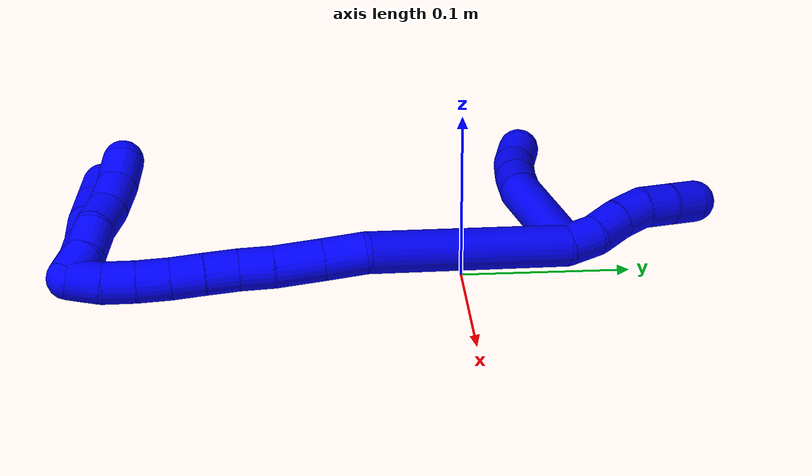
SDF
<sdf version="1.7">
 <world name="default">
  <model name="1">
   <static>0</static>
   <link name="1">
    <collision name="collision-cylinder-e_1_2_8">
     <pose>-0.020403 -0.000506 0.034634 0.014619 -0.532313 -0.003986</pose>
     <geometry><cylinder><radius>0.0125</radius><length>0.0804</length></cylinder></geometry>
     <surface>
      <friction><ode><mu>1.16</mu><mu2>1.16</mu2><slip1>0</slip1><slip2>0</slip2></ode></friction>
      <contact><ode><kp>1e+06</kp><kd>1</kd><max_vel>0</max_vel><min_depth>0.001</min_depth></ode></contact>
     </surface>
    </collision>
    <visual name="visual-cylinder-e_1_2_8">
     <pose>-0.020403 -0.000506 0.034634 0.014619 -0.532313 -0.003986</pose>
     <geometry><cylinder><radius>0.0125</radius><length>0.0804</length></cylinder></geometry>
     <material><ambient>0 0 1 1</ambient></material>
    </visual>
    <collision name="collision-cylinder-e_2_8_9">
     <pose>-0.048115 0.001256 0.078855 -0.232407 -0.638393 0.077119</pose>
     <geometry><cylinder><radius>0.0125</radius><length>0.024535</length></cylinder></geometry>
     <surface>
      <friction><ode><mu>1.16</mu><mu2>1.16</mu2><slip1>0</slip1><slip2>0</slip2></ode></friction>
      <contact><ode><kp>1e+06</kp><kd>1</kd><max_vel>0</max_vel><min_depth>0.001</min_depth></ode></contact>
     </surface>
    </collision>
    <visual name="visual-cylinder-e_2_8_9">
     <pose>-0.048115 0.001256 0.078855 -0.232407 -0.638393 0.077119</pose>
     <geometry><cylinder><radius>0.0125</radius><length>0.024535</length></cylinder></geometry>
     <material><ambient>0 0 1 1</ambient></material>
    </visual>
    <collision name="collision-cylinder-e_3_9_10">
     <pose>-0.062956 0.00676 0.097839 -0.331517 -0.648421 0.112326</pose>
     <geometry><cylinder><radius>0.0125</radius><length>0.024939</length></cylinder></geometry>
     <surface>
      <friction><ode><mu>1.16</mu><mu2>1.16</mu2><slip1>0</slip1><slip2>0</slip2></ode></friction>
      <contact><ode><kp>1e+06</kp><kd>1</kd><max_vel>0</max_vel><min_depth>0.001</min_depth></ode></contact>
     </surface>
    </collision>
    <visual name="visual-cylinder-e_3_9_10">
     <pose>-0.062956 0.00676 0.097839 -0.331517 -0.648421 0.112326</pose>
     <geometry><cylinder><radius>0.0125</radius><length>0.024939</length></cylinder></geometry>
     <material><ambient>0 0 1 1</ambient></material>
    </visual>
    <collision name="collision-cylinder-e_4_10_6">
     <pose>-0.075039 0.01472 0.114866 -0.55452 -0.469376 0.135878</pose>
     <geometry><cylinder><radius>0.0125</radius><length>0.020127</length></cylinder></geometry>
     <surface>
      <friction><ode><mu>1.16</mu><mu2>1.16</mu2><slip1>0</slip1><slip2>0</slip2></ode></friction>
      <contact><ode><kp>1e+06</kp><kd>1</kd><max_vel>0</max_vel><min_depth>0.001</min_depth></ode></contact>
     </surface>
    </collision>
    <visual name="visual-cylinder-e_4_10_6">
     <pose>-0.075039 0.01472 0.114866 -0.55452 -0.469376 0.135878</pose>
     <geometry><cylinder><radius>0.0125</radius><length>0.020127</length></cylinder></geometry>
     <material><ambient>0 0 1 1</ambient></material>
    </visual>
    <collision name="collision-cylinder-e_1_2_11">
     <pose>-0.001843 0.009742 0.001303 -1.4378 -0.185399 0.162356</pose>
     <geometry><cylinder><radius>0.0125</radius><length>0.02</length></cylinder></geometry>
     <surface>
      <friction><ode><mu>1.16</mu><mu2>1.16</mu2><slip1>0</slip1><slip2>0</slip2></ode></friction>
      <contact><ode><kp>1e+06</kp><kd>1</kd><max_vel>0</max_vel><min_depth>0.001</min_depth></ode></contact>
     </surface>
    </collision>
    <visual name="visual-cylinder-e_1_2_11">
     <pose>-0.001843 0.009742 0.001303 -1.4378 -0.185399 0.162356</pose>
     <geometry><cylinder><radius>0.0125</radius><length>0.02</length></cylinder></geometry>
     <material><ambient>0 0 1 1</ambient></material>
    </visual>
    <collision name="collision-cylinder-e_2_11_12">
     <pose>-0.005834 0.028426 0.006534 -1.15694 -0.216404 0.141625</pose>
     <geometry><cylinder><radius>0.0125</radius><length>0.02</length></cylinder></geometry>
     <surface>
      <friction><ode><mu>1.16</mu><mu2>1.16</mu2><slip1>0</slip1><slip2>0</slip2></ode></friction>
      <contact><ode><kp>1e+06</kp><kd>1</kd><max_vel>0</max_vel><min_depth>0.001</min_depth></ode></contact>
     </surface>
    </collision>
    <visual name="visual-cylinder-e_2_11_12">
     <pose>-0.005834 0.028426 0.006534 -1.15694 -0.216404 0.141625</pose>
     <geometry><cylinder><radius>0.0125</radius><length>0.02</length></cylinder></geometry>
     <material><ambient>0 0 1 1</ambient></material>
    </visual>
    <collision name="collision-cylinder-e_3_12_13">
     <pose>-0.010697 0.046539 0.013381 -1.26263 -0.275074 0.201707</pose>
     <geometry><cylinder><radius>0.0125</radius><length>0.02</length></cylinder></geometry>
     <surface>
      <friction><ode><mu>1.16</mu><mu2>1.16</mu2><slip1>0</slip1><slip2>0</slip2></ode></friction>
      <contact><ode><kp>1e+06</kp><kd>1</kd><max_vel>0</max_vel><min_depth>0.001</min_depth></ode></contact>
     </surface>
    </collision>
    <visual name="visual-cylinder-e_3_12_13">
     <pose>-0.010697 0.046539 0.013381 -1.26263 -0.275074 0.201707</pose>
     <geometry><cylinder><radius>0.0125</radius><length>0.02</length></cylinder></geometry>
     <material><ambient>0 0 1 1</ambient></material>
    </visual>
    <collision name="collision-cylinder-e_4_13_14">
     <pose>-0.017148 0.064981 0.016591 -1.53946 -0.38272 0.371185</pose>
     <geometry><cylinder><radius>0.0125</radius><length>0.02</length></cylinder></geometry>
     <surface>
      <friction><ode><mu>1.16</mu><mu2>1.16</mu2><slip1>0</slip1><slip2>0</slip2></ode></friction>
      <contact><ode><kp>1e+06</kp><kd>1</kd><max_vel>0</max_vel><min_depth>0.001</min_depth></ode></contact>
     </surface>
    </collision>
    <visual name="visual-cylinder-e_4_13_14">
     <pose>-0.017148 0.064981 0.016591 -1.53946 -0.38272 0.371185</pose>
     <geometry><cylinder><radius>0.0125</radius><length>0.02</length></cylinder></geometry>
     <material><ambient>0 0 1 1</ambient></material>
    </visual>
    <collision name="collision-cylinder-e_5_14_5">
     <pose>-0.025411 0.083127 0.017745 -1.47381 -0.469951 0.427826</pose>
     <geometry><cylinder><radius>0.0125</radius><length>0.02</length></cylinder></geometry>
     <surface>
      <friction><ode><mu>1.16</mu><mu2>1.16</mu2><slip1>0</slip1><slip2>0</slip2></ode></friction>
      <contact><ode><kp>1e+06</kp><kd>1</kd><max_vel>0</max_vel><min_depth>0.001</min_depth></ode></contact>
     </surface>
    </collision>
    <visual name="visual-cylinder-e_5_14_5">
     <pose>-0.025411 0.083127 0.017745 -1.47381 -0.469951 0.427826</pose>
     <geometry><cylinder><radius>0.0125</radius><length>0.02</length></cylinder></geometry>
     <material><ambient>0 0 1 1</ambient></material>
    </visual>
    <collision name="collision-cylinder-e_1_2_15">
     <pose>0.016047 -0.059596 0.009551 1.41189 0.259863 0.221874</pose>
     <geometry><cylinder><radius>0.0125</radius><length>0.124906</length></cylinder></geometry>
     <surface>
      <friction><ode><mu>1.16</mu><mu2>1.16</mu2><slip1>0</slip1><slip2>0</slip2></ode></friction>
      <contact><ode><kp>1e+06</kp><kd>1</kd><max_vel>0</max_vel><min_depth>0.001</min_depth></ode></contact>
     </surface>
    </collision>
    <visual name="visual-cylinder-e_1_2_15">
     <pose>0.016047 -0.059596 0.009551 1.41189 0.259863 0.221874</pose>
     <geometry><cylinder><radius>0.0125</radius><length>0.124906</length></cylinder></geometry>
     <material><ambient>0 0 1 1</ambient></material>
    </visual>
    <collision name="collision-cylinder-e_2_15_16">
     <pose>0.031978 -0.131523 0.021443 1.38313 -0.009261 -0.007668</pose>
     <geometry><cylinder><radius>0.0125</radius><length>0.025104</length></cylinder></geometry>
     <surface>
      <friction><ode><mu>1.16</mu><mu2>1.16</mu2><slip1>0</slip1><slip2>0</slip2></ode></friction>
      <contact><ode><kp>1e+06</kp><kd>1</kd><max_vel>0</max_vel><min_depth>0.001</min_depth></ode></contact>
     </surface>
    </collision>
    <visual name="visual-cylinder-e_2_15_16">
     <pose>0.031978 -0.131523 0.021443 1.38313 -0.009261 -0.007668</pose>
     <geometry><cylinder><radius>0.0125</radius><length>0.025104</length></cylinder></geometry>
     <material><ambient>0 0 1 1</ambient></material>
    </visual>
    <collision name="collision-cylinder-e_3_16_17">
     <pose>0.031949 -0.158205 0.026521 1.38239 0.005948 0.004921</pose>
     <geometry><cylinder><radius>0.0125</radius><length>0.029221</length></cylinder></geometry>
     <surface>
      <friction><ode><mu>1.16</mu><mu2>1.16</mu2><slip1>0</slip1><slip2>0</slip2></ode></friction>
      <contact><ode><kp>1e+06</kp><kd>1</kd><max_vel>0</max_vel><min_depth>0.001</min_depth></ode></contact>
     </surface>
    </collision>
    <visual name="visual-cylinder-e_3_16_17">
     <pose>0.031949 -0.158205 0.026521 1.38239 0.005948 0.004921</pose>
     <geometry><cylinder><radius>0.0125</radius><length>0.029221</length></cylinder></geometry>
     <material><ambient>0 0 1 1</ambient></material>
    </visual>
    <collision name="collision-cylinder-e_4_17_18">
     <pose>0.032206 -0.182491 0.031924 1.30848 0.016575 0.012712</pose>
     <geometry><cylinder><radius>0.0125</radius><length>0.020574</length></cylinder></geometry>
     <surface>
      <friction><ode><mu>1.16</mu><mu2>1.16</mu2><slip1>0</slip1><slip2>0</slip2></ode></friction>
      <contact><ode><kp>1e+06</kp><kd>1</kd><max_vel>0</max_vel><min_depth>0.001</min_depth></ode></contact>
     </surface>
    </collision>
    <visual name="visual-cylinder-e_4_17_18">
     <pose>0.032206 -0.182491 0.031924 1.30848 0.016575 0.012712</pose>
     <geometry><cylinder><radius>0.0125</radius><length>0.020574</length></cylinder></geometry>
     <material><ambient>0 0 1 1</ambient></material>
    </visual>
    <collision name="collision-cylinder-e_5_18_19">
     <pose>0.032607 -0.202249 0.036645 1.36475 0.022896 0.018605</pose>
     <geometry><cylinder><radius>0.0125</radius><length>0.020079</length></cylinder></geometry>
     <surface>
      <friction><ode><mu>1.16</mu><mu2>1.16</mu2><slip1>0</slip1><slip2>0</slip2></ode></friction>
      <contact><ode><kp>1e+06</kp><kd>1</kd><max_vel>0</max_vel><min_depth>0.001</min_depth></ode></contact>
     </surface>
    </collision>
    <visual name="visual-cylinder-e_5_18_19">
     <pose>0.032607 -0.202249 0.036645 1.36475 0.022896 0.018605</pose>
     <geometry><cylinder><radius>0.0125</radius><length>0.020079</length></cylinder></geometry>
     <material><ambient>0 0 1 1</ambient></material>
    </visual>
    <collision name="collision-cylinder-e_6_19_20">
     <pose>0.03274 -0.221867 0.040812 1.3583 -0.009628 -0.007772</pose>
     <geometry><cylinder><radius>0.0125</radius><length>0.020037</length></cylinder></geometry>
     <surface>
      <friction><ode><mu>1.16</mu><mu2>1.16</mu2><slip1>0</slip1><slip2>0</slip2></ode></friction>
      <contact><ode><kp>1e+06</kp><kd>1</kd><max_vel>0</max_vel><min_depth>0.001</min_depth></ode></contact>
     </surface>
    </collision>
    <visual name="visual-cylinder-e_6_19_20">
     <pose>0.03274 -0.221867 0.040812 1.3583 -0.009628 -0.007772</pose>
     <geometry><cylinder><radius>0.0125</radius><length>0.020037</length></cylinder></geometry>
     <material><ambient>0 0 1 1</ambient></material>
    </visual>
    <collision name="collision-cylinder-e_7_20_21">
     <pose>0.032816 -0.24134 0.04543 1.31754 0.017218 0.013329</pose>
     <geometry><cylinder><radius>0.0125</radius><length>0.020002</length></cylinder></geometry>
     <surface>
      <friction><ode><mu>1.16</mu><mu2>1.16</mu2><slip1>0</slip1><slip2>0</slip2></ode></friction>
      <contact><ode><kp>1e+06</kp><kd>1</kd><max_vel>0</max_vel><min_depth>0.001</min_depth></ode></contact>
     </surface>
    </collision>
    <visual name="visual-cylinder-e_7_20_21">
     <pose>0.032816 -0.24134 0.04543 1.31754 0.017218 0.013329</pose>
     <geometry><cylinder><radius>0.0125</radius><length>0.020002</length></cylinder></geometry>
     <material><ambient>0 0 1 1</ambient></material>
    </visual>
    <collision name="collision-cylinder-e_8_21_22">
     <pose>0.033185 -0.260536 0.051005 1.25876 0.019733 0.014369</pose>
     <geometry><cylinder><radius>0.0125</radius><length>0.02</length></cylinder></geometry>
     <surface>
      <friction><ode><mu>1.16</mu><mu2>1.16</mu2><slip1>0</slip1><slip2>0</slip2></ode></friction>
      <contact><ode><kp>1e+06</kp><kd>1</kd><max_vel>0</max_vel><min_depth>0.001</min_depth></ode></contact>
     </surface>
    </collision>
    <visual name="visual-cylinder-e_8_21_22">
     <pose>0.033185 -0.260536 0.051005 1.25876 0.019733 0.014369</pose>
     <geometry><cylinder><radius>0.0125</radius><length>0.02</length></cylinder></geometry>
     <material><ambient>0 0 1 1</ambient></material>
    </visual>
    <collision name="collision-cylinder-e_9_22_1">
     <pose>0.034089 -0.278899 0.058763 1.08345 0.070425 0.042392</pose>
     <geometry><cylinder><radius>0.0125</radius><length>0.020077</length></cylinder></geometry>
     <surface>
      <friction><ode><mu>1.16</mu><mu2>1.16</mu2><slip1>0</slip1><slip2>0</slip2></ode></friction>
      <contact><ode><kp>1e+06</kp><kd>1</kd><max_vel>0</max_vel><min_depth>0.001</min_depth></ode></contact>
     </surface>
    </collision>
    <visual name="visual-cylinder-e_9_22_1">
     <pose>0.034089 -0.278899 0.058763 1.08345 0.070425 0.042392</pose>
     <geometry><cylinder><radius>0.0125</radius><length>0.020077</length></cylinder></geometry>
     <material><ambient>0 0 1 1</ambient></material>
    </visual>
    <collision name="collision-cylinder-e_1_1_23">
     <pose>0.033825 -0.280256 0.070007 -0.851952 -0.097125 0.044099</pose>
     <geometry><cylinder><radius>0.0125</radius><length>0.02</length></cylinder></geometry>
     <surface>
      <friction><ode><mu>1.16</mu><mu2>1.16</mu2><slip1>0</slip1><slip2>0</slip2></ode></friction>
      <contact><ode><kp>1e+06</kp><kd>1</kd><max_vel>0</max_vel><min_depth>0.001</min_depth></ode></contact>
     </surface>
    </collision>
    <visual name="visual-cylinder-e_1_1_23">
     <pose>0.033825 -0.280256 0.070007 -0.851952 -0.097125 0.044099</pose>
     <geometry><cylinder><radius>0.0125</radius><length>0.02</length></cylinder></geometry>
     <material><ambient>0 0 1 1</ambient></material>
    </visual>
    <collision name="collision-cylinder-e_2_23_24">
     <pose>0.031686 -0.267267 0.084831 -0.586759 -0.11722 0.035449</pose>
     <geometry><cylinder><radius>0.0125</radius><length>0.02</length></cylinder></geometry>
     <surface>
      <friction><ode><mu>1.16</mu><mu2>1.16</mu2><slip1>0</slip1><slip2>0</slip2></ode></friction>
      <contact><ode><kp>1e+06</kp><kd>1</kd><max_vel>0</max_vel><min_depth>0.001</min_depth></ode></contact>
     </surface>
    </collision>
    <visual name="visual-cylinder-e_2_23_24">
     <pose>0.031686 -0.267267 0.084831 -0.586759 -0.11722 0.035449</pose>
     <geometry><cylinder><radius>0.0125</radius><length>0.02</length></cylinder></geometry>
     <material><ambient>0 0 1 1</ambient></material>
    </visual>
    <collision name="collision-cylinder-e_3_24_25">
     <pose>0.027037 -0.255747 0.100287 -0.697423 -0.35538 0.130397</pose>
     <geometry><cylinder><radius>0.0125</radius><length>0.02</length></cylinder></geometry>
     <surface>
      <friction><ode><mu>1.16</mu><mu2>1.16</mu2><slip1>0</slip1><slip2>0</slip2></ode></friction>
      <contact><ode><kp>1e+06</kp><kd>1</kd><max_vel>0</max_vel><min_depth>0.001</min_depth></ode></contact>
     </surface>
    </collision>
    <visual name="visual-cylinder-e_3_24_25">
     <pose>0.027037 -0.255747 0.100287 -0.697423 -0.35538 0.130397</pose>
     <geometry><cylinder><radius>0.0125</radius><length>0.02</length></cylinder></geometry>
     <material><ambient>0 0 1 1</ambient></material>
    </visual>
    <collision name="collision-cylinder-e_4_25_26">
     <pose>0.02141 -0.244299 0.115593 -0.589147 -0.216457 0.065907</pose>
     <geometry><cylinder><radius>0.0125</radius><length>0.02</length></cylinder></geometry>
     <surface>
      <friction><ode><mu>1.16</mu><mu2>1.16</mu2><slip1>0</slip1><slip2>0</slip2></ode></friction>
      <contact><ode><kp>1e+06</kp><kd>1</kd><max_vel>0</max_vel><min_depth>0.001</min_depth></ode></contact>
     </surface>
    </collision>
    <visual name="visual-cylinder-e_4_25_26">
     <pose>0.02141 -0.244299 0.115593 -0.589147 -0.216457 0.065907</pose>
     <geometry><cylinder><radius>0.0125</radius><length>0.02</length></cylinder></geometry>
     <material><ambient>0 0 1 1</ambient></material>
    </visual>
    <collision name="collision-cylinder-e_5_26_4">
     <pose>0.017856 -0.234174 0.132428 -0.494508 -0.141138 0.035681</pose>
     <geometry><cylinder><radius>0.0125</radius><length>0.02</length></cylinder></geometry>
     <surface>
      <friction><ode><mu>1.16</mu><mu2>1.16</mu2><slip1>0</slip1><slip2>0</slip2></ode></friction>
      <contact><ode><kp>1e+06</kp><kd>1</kd><max_vel>0</max_vel><min_depth>0.001</min_depth></ode></contact>
     </surface>
    </collision>
    <visual name="visual-cylinder-e_5_26_4">
     <pose>0.017856 -0.234174 0.132428 -0.494508 -0.141138 0.035681</pose>
     <geometry><cylinder><radius>0.0125</radius><length>0.02</length></cylinder></geometry>
     <material><ambient>0 0 1 1</ambient></material>
    </visual>
    <collision name="collision-cylinder-e_1_1_27">
     <pose>0.030849 -0.282068 0.070676 -0.666131 -0.405688 0.142067</pose>
     <geometry><cylinder><radius>0.0125</radius><length>0.02</length></cylinder></geometry>
     <surface>
      <friction><ode><mu>1.16</mu><mu2>1.16</mu2><slip1>0</slip1><slip2>0</slip2></ode></friction>
      <contact><ode><kp>1e+06</kp><kd>1</kd><max_vel>0</max_vel><min_depth>0.001</min_depth></ode></contact>
     </surface>
    </collision>
    <visual name="visual-cylinder-e_1_1_27">
     <pose>0.030849 -0.282068 0.070676 -0.666131 -0.405688 0.142067</pose>
     <geometry><cylinder><radius>0.0125</radius><length>0.02</length></cylinder></geometry>
     <material><ambient>0 0 1 1</ambient></material>
    </visual>
    <collision name="collision-cylinder-e_2_27_28">
     <pose>0.022176 -0.272495 0.085805 -0.45787 -0.492311 0.11696</pose>
     <geometry><cylinder><radius>0.0125</radius><length>0.02</length></cylinder></geometry>
     <surface>
      <friction><ode><mu>1.16</mu><mu2>1.16</mu2><slip1>0</slip1><slip2>0</slip2></ode></friction>
      <contact><ode><kp>1e+06</kp><kd>1</kd><max_vel>0</max_vel><min_depth>0.001</min_depth></ode></contact>
     </surface>
    </collision>
    <visual name="visual-cylinder-e_2_27_28">
     <pose>0.022176 -0.272495 0.085805 -0.45787 -0.492311 0.11696</pose>
     <geometry><cylinder><radius>0.0125</radius><length>0.02</length></cylinder></geometry>
     <material><ambient>0 0 1 1</ambient></material>
    </visual>
    <collision name="collision-cylinder-e_3_28_29">
     <pose>0.013779 -0.265099 0.102328 -0.385858 -0.375788 0.074256</pose>
     <geometry><cylinder><radius>0.0125</radius><length>0.02</length></cylinder></geometry>
     <surface>
      <friction><ode><mu>1.16</mu><mu2>1.16</mu2><slip1>0</slip1><slip2>0</slip2></ode></friction>
      <contact><ode><kp>1e+06</kp><kd>1</kd><max_vel>0</max_vel><min_depth>0.001</min_depth></ode></contact>
     </surface>
    </collision>
    <visual name="visual-cylinder-e_3_28_29">
     <pose>0.013779 -0.265099 0.102328 -0.385858 -0.375788 0.074256</pose>
     <geometry><cylinder><radius>0.0125</radius><length>0.02</length></cylinder></geometry>
     <material><ambient>0 0 1 1</ambient></material>
    </visual>
    <collision name="collision-cylinder-e_4_29_30">
     <pose>0.006417 -0.257029 0.119039 -0.513997 -0.378157 0.100501</pose>
     <geometry><cylinder><radius>0.0125</radius><length>0.02</length></cylinder></geometry>
     <surface>
      <friction><ode><mu>1.16</mu><mu2>1.16</mu2><slip1>0</slip1><slip2>0</slip2></ode></friction>
      <contact><ode><kp>1e+06</kp><kd>1</kd><max_vel>0</max_vel><min_depth>0.001</min_depth></ode></contact>
     </surface>
    </collision>
    <visual name="visual-cylinder-e_4_29_30">
     <pose>0.006417 -0.257029 0.119039 -0.513997 -0.378157 0.100501</pose>
     <geometry><cylinder><radius>0.0125</radius><length>0.02</length></cylinder></geometry>
     <material><ambient>0 0 1 1</ambient></material>
    </visual>
    <collision name="collision-cylinder-e_5_30_3">
     <pose>-0.000943 -0.247873 0.135226 -0.515518 -0.375566 0.100105</pose>
     <geometry><cylinder><radius>0.0125</radius><length>0.02</length></cylinder></geometry>
     <surface>
      <friction><ode><mu>1.16</mu><mu2>1.16</mu2><slip1>0</slip1><slip2>0</slip2></ode></friction>
      <contact><ode><kp>1e+06</kp><kd>1</kd><max_vel>0</max_vel><min_depth>0.001</min_depth></ode></contact>
     </surface>
    </collision>
    <visual name="visual-cylinder-e_5_30_3">
     <pose>-0.000943 -0.247873 0.135226 -0.515518 -0.375566 0.100105</pose>
     <geometry><cylinder><radius>0.0125</radius><length>0.02</length></cylinder></geometry>
     <material><ambient>0 0 1 1</ambient></material>
    </visual>
    <collision name="collision-sphere-3">
     <pose>-0.004611 -0.243287 0.14332 0 -0 0</pose>
     <geometry><sphere><radius>0.0125</radius></sphere></geometry>
     <surface>
      <friction><ode><mu>1.16</mu><mu2>1.16</mu2><slip1>0</slip1><slip2>0</slip2></ode></friction>
      <contact><ode><kp>1e+06</kp><kd>1</kd><max_vel>0</max_vel><min_depth>0.001</min_depth></ode></contact>
     </surface>
    </collision>
    <visual name="visual-sphere-3">
     <pose>-0.004611 -0.243287 0.14332 0 -0 0</pose>
     <geometry><sphere><radius>0.0125</radius></sphere></geometry>
     <material><ambient>0 0 1 1</ambient></material>
    </visual>
    <collision name="collision-sphere-30">
     <pose>0.002725 -0.252459 0.127132 0 -0 0</pose>
     <geometry><sphere><radius>0.0125</radius></sphere></geometry>
     <surface>
      <friction><ode><mu>1.16</mu><mu2>1.16</mu2><slip1>0</slip1><slip2>0</slip2></ode></friction>
      <contact><ode><kp>1e+06</kp><kd>1</kd><max_vel>0</max_vel><min_depth>0.001</min_depth></ode></contact>
     </surface>
    </collision>
    <visual name="visual-sphere-30">
     <pose>0.002725 -0.252459 0.127132 0 -0 0</pose>
     <geometry><sphere><radius>0.0125</radius></sphere></geometry>
     <material><ambient>0 0 1 1</ambient></material>
    </visual>
    <collision name="collision-sphere-29">
     <pose>0.010109 -0.261598 0.110946 0 -0 0</pose>
     <geometry><sphere><radius>0.0125</radius></sphere></geometry>
     <surface>
      <friction><ode><mu>1.16</mu><mu2>1.16</mu2><slip1>0</slip1><slip2>0</slip2></ode></friction>
      <contact><ode><kp>1e+06</kp><kd>1</kd><max_vel>0</max_vel><min_depth>0.001</min_depth></ode></contact>
     </surface>
    </collision>
    <visual name="visual-sphere-29">
     <pose>0.010109 -0.261598 0.110946 0 -0 0</pose>
     <geometry><sphere><radius>0.0125</radius></sphere></geometry>
     <material><ambient>0 0 1 1</ambient></material>
    </visual>
    <collision name="collision-sphere-28">
     <pose>0.017449 -0.2686 0.09371 0 -0 0</pose>
     <geometry><sphere><radius>0.0125</radius></sphere></geometry>
     <surface>
      <friction><ode><mu>1.16</mu><mu2>1.16</mu2><slip1>0</slip1><slip2>0</slip2></ode></friction>
      <contact><ode><kp>1e+06</kp><kd>1</kd><max_vel>0</max_vel><min_depth>0.001</min_depth></ode></contact>
     </surface>
    </collision>
    <visual name="visual-sphere-28">
     <pose>0.017449 -0.2686 0.09371 0 -0 0</pose>
     <geometry><sphere><radius>0.0125</radius></sphere></geometry>
     <material><ambient>0 0 1 1</ambient></material>
    </visual>
    <collision name="collision-sphere-27">
     <pose>0.026902 -0.276391 0.0779 0 -0 0</pose>
     <geometry><sphere><radius>0.0125</radius></sphere></geometry>
     <surface>
      <friction><ode><mu>1.16</mu><mu2>1.16</mu2><slip1>0</slip1><slip2>0</slip2></ode></friction>
      <contact><ode><kp>1e+06</kp><kd>1</kd><max_vel>0</max_vel><min_depth>0.001</min_depth></ode></contact>
     </surface>
    </collision>
    <visual name="visual-sphere-27">
     <pose>0.026902 -0.276391 0.0779 0 -0 0</pose>
     <geometry><sphere><radius>0.0125</radius></sphere></geometry>
     <material><ambient>0 0 1 1</ambient></material>
    </visual>
    <collision name="collision-sphere-4">
     <pose>0.016449 -0.229475 0.141143 0 -0 0</pose>
     <geometry><sphere><radius>0.0125</radius></sphere></geometry>
     <surface>
      <friction><ode><mu>1.16</mu><mu2>1.16</mu2><slip1>0</slip1><slip2>0</slip2></ode></friction>
      <contact><ode><kp>1e+06</kp><kd>1</kd><max_vel>0</max_vel><min_depth>0.001</min_depth></ode></contact>
     </surface>
    </collision>
    <visual name="visual-sphere-4">
     <pose>0.016449 -0.229475 0.141143 0 -0 0</pose>
     <geometry><sphere><radius>0.0125</radius></sphere></geometry>
     <material><ambient>0 0 1 1</ambient></material>
    </visual>
    <collision name="collision-sphere-26">
     <pose>0.019262 -0.238873 0.123714 0 -0 0</pose>
     <geometry><sphere><radius>0.0125</radius></sphere></geometry>
     <surface>
      <friction><ode><mu>1.16</mu><mu2>1.16</mu2><slip1>0</slip1><slip2>0</slip2></ode></friction>
      <contact><ode><kp>1e+06</kp><kd>1</kd><max_vel>0</max_vel><min_depth>0.001</min_depth></ode></contact>
     </surface>
    </collision>
    <visual name="visual-sphere-26">
     <pose>0.019262 -0.238873 0.123714 0 -0 0</pose>
     <geometry><sphere><radius>0.0125</radius></sphere></geometry>
     <material><ambient>0 0 1 1</ambient></material>
    </visual>
    <collision name="collision-sphere-25">
     <pose>0.023558 -0.249726 0.107473 0 -0 0</pose>
     <geometry><sphere><radius>0.0125</radius></sphere></geometry>
     <surface>
      <friction><ode><mu>1.16</mu><mu2>1.16</mu2><slip1>0</slip1><slip2>0</slip2></ode></friction>
      <contact><ode><kp>1e+06</kp><kd>1</kd><max_vel>0</max_vel><min_depth>0.001</min_depth></ode></contact>
     </surface>
    </collision>
    <visual name="visual-sphere-25">
     <pose>0.023558 -0.249726 0.107473 0 -0 0</pose>
     <geometry><sphere><radius>0.0125</radius></sphere></geometry>
     <material><ambient>0 0 1 1</ambient></material>
    </visual>
    <collision name="collision-sphere-24">
     <pose>0.030517 -0.261769 0.093101 0 -0 0</pose>
     <geometry><sphere><radius>0.0125</radius></sphere></geometry>
     <surface>
      <friction><ode><mu>1.16</mu><mu2>1.16</mu2><slip1>0</slip1><slip2>0</slip2></ode></friction>
      <contact><ode><kp>1e+06</kp><kd>1</kd><max_vel>0</max_vel><min_depth>0.001</min_depth></ode></contact>
     </surface>
    </collision>
    <visual name="visual-sphere-24">
     <pose>0.030517 -0.261769 0.093101 0 -0 0</pose>
     <geometry><sphere><radius>0.0125</radius></sphere></geometry>
     <material><ambient>0 0 1 1</ambient></material>
    </visual>
    <collision name="collision-sphere-23">
     <pose>0.032856 -0.272766 0.076561 0 -0 0</pose>
     <geometry><sphere><radius>0.0125</radius></sphere></geometry>
     <surface>
      <friction><ode><mu>1.16</mu><mu2>1.16</mu2><slip1>0</slip1><slip2>0</slip2></ode></friction>
      <contact><ode><kp>1e+06</kp><kd>1</kd><max_vel>0</max_vel><min_depth>0.001</min_depth></ode></contact>
     </surface>
    </collision>
    <visual name="visual-sphere-23">
     <pose>0.032856 -0.272766 0.076561 0 -0 0</pose>
     <geometry><sphere><radius>0.0125</radius></sphere></geometry>
     <material><ambient>0 0 1 1</ambient></material>
    </visual>
    <collision name="collision-sphere-1">
     <pose>0.034795 -0.287746 0.063452 0 -0 0</pose>
     <geometry><sphere><radius>0.0125</radius></sphere></geometry>
     <surface>
      <friction><ode><mu>1.16</mu><mu2>1.16</mu2><slip1>0</slip1><slip2>0</slip2></ode></friction>
      <contact><ode><kp>1e+06</kp><kd>1</kd><max_vel>0</max_vel><min_depth>0.001</min_depth></ode></contact>
     </surface>
    </collision>
    <visual name="visual-sphere-1">
     <pose>0.034795 -0.287746 0.063452 0 -0 0</pose>
     <geometry><sphere><radius>0.0125</radius></sphere></geometry>
     <material><ambient>0 0 1 1</ambient></material>
    </visual>
    <collision name="collision-sphere-22">
     <pose>0.033382 -0.270051 0.054074 0 -0 0</pose>
     <geometry><sphere><radius>0.0125</radius></sphere></geometry>
     <surface>
      <friction><ode><mu>1.16</mu><mu2>1.16</mu2><slip1>0</slip1><slip2>0</slip2></ode></friction>
      <contact><ode><kp>1e+06</kp><kd>1</kd><max_vel>0</max_vel><min_depth>0.001</min_depth></ode></contact>
     </surface>
    </collision>
    <visual name="visual-sphere-22">
     <pose>0.033382 -0.270051 0.054074 0 -0 0</pose>
     <geometry><sphere><radius>0.0125</radius></sphere></geometry>
     <material><ambient>0 0 1 1</ambient></material>
    </visual>
    <collision name="collision-sphere-21">
     <pose>0.032988 -0.251021 0.047935 0 -0 0</pose>
     <geometry><sphere><radius>0.0125</radius></sphere></geometry>
     <surface>
      <friction><ode><mu>1.16</mu><mu2>1.16</mu2><slip1>0</slip1><slip2>0</slip2></ode></friction>
      <contact><ode><kp>1e+06</kp><kd>1</kd><max_vel>0</max_vel><min_depth>0.001</min_depth></ode></contact>
     </surface>
    </collision>
    <visual name="visual-sphere-21">
     <pose>0.032988 -0.251021 0.047935 0 -0 0</pose>
     <geometry><sphere><radius>0.0125</radius></sphere></geometry>
     <material><ambient>0 0 1 1</ambient></material>
    </visual>
    <collision name="collision-sphere-11">
     <pose>-0.003687 0.019484 0.002607 0 -0 0</pose>
     <geometry><sphere><radius>0.0125</radius></sphere></geometry>
     <surface>
      <friction><ode><mu>1.16</mu><mu2>1.16</mu2><slip1>0</slip1><slip2>0</slip2></ode></friction>
      <contact><ode><kp>1e+06</kp><kd>1</kd><max_vel>0</max_vel><min_depth>0.001</min_depth></ode></contact>
     </surface>
    </collision>
    <visual name="visual-sphere-11">
     <pose>-0.003687 0.019484 0.002607 0 -0 0</pose>
     <geometry><sphere><radius>0.0125</radius></sphere></geometry>
     <material><ambient>0 0 1 1</ambient></material>
    </visual>
    <collision name="collision-sphere-6">
     <pose>-0.079591 0.019446 0.122496 0 -0 0</pose>
     <geometry><sphere><radius>0.0125</radius></sphere></geometry>
     <surface>
      <friction><ode><mu>1.16</mu><mu2>1.16</mu2><slip1>0</slip1><slip2>0</slip2></ode></friction>
      <contact><ode><kp>1e+06</kp><kd>1</kd><max_vel>0</max_vel><min_depth>0.001</min_depth></ode></contact>
     </surface>
    </collision>
    <visual name="visual-sphere-6">
     <pose>-0.079591 0.019446 0.122496 0 -0 0</pose>
     <geometry><sphere><radius>0.0125</radius></sphere></geometry>
     <material><ambient>0 0 1 1</ambient></material>
    </visual>
    <collision name="collision-sphere-10">
     <pose>-0.070487 0.009995 0.107236 0 -0 0</pose>
     <geometry><sphere><radius>0.0125</radius></sphere></geometry>
     <surface>
      <friction><ode><mu>1.16</mu><mu2>1.16</mu2><slip1>0</slip1><slip2>0</slip2></ode></friction>
      <contact><ode><kp>1e+06</kp><kd>1</kd><max_vel>0</max_vel><min_depth>0.001</min_depth></ode></contact>
     </surface>
    </collision>
    <visual name="visual-sphere-10">
     <pose>-0.070487 0.009995 0.107236 0 -0 0</pose>
     <geometry><sphere><radius>0.0125</radius></sphere></geometry>
     <material><ambient>0 0 1 1</ambient></material>
    </visual>
    <collision name="collision-sphere-9">
     <pose>-0.055426 0.003525 0.088441 0 -0 0</pose>
     <geometry><sphere><radius>0.0125</radius></sphere></geometry>
     <surface>
      <friction><ode><mu>1.16</mu><mu2>1.16</mu2><slip1>0</slip1><slip2>0</slip2></ode></friction>
      <contact><ode><kp>1e+06</kp><kd>1</kd><max_vel>0</max_vel><min_depth>0.001</min_depth></ode></contact>
     </surface>
    </collision>
    <visual name="visual-sphere-9">
     <pose>-0.055426 0.003525 0.088441 0 -0 0</pose>
     <geometry><sphere><radius>0.0125</radius></sphere></geometry>
     <material><ambient>0 0 1 1</ambient></material>
    </visual>
    <collision name="collision-sphere-2">
     <geometry><sphere><radius>0.0125</radius></sphere></geometry>
     <surface>
      <friction><ode><mu>1.16</mu><mu2>1.16</mu2><slip1>0</slip1><slip2>0</slip2></ode></friction>
      <contact><ode><kp>1e+06</kp><kd>1</kd><max_vel>0</max_vel><min_depth>0.001</min_depth></ode></contact>
     </surface>
    </collision>
    <visual name="visual-sphere-2">
     <geometry><sphere><radius>0.0125</radius></sphere></geometry>
     <material><ambient>0 0 1 1</ambient></material>
    </visual>
    <collision name="collision-sphere-19">
     <pose>0.032836 -0.212074 0.038699 0 -0 0</pose>
     <geometry><sphere><radius>0.0125</radius></sphere></geometry>
     <surface>
      <friction><ode><mu>1.16</mu><mu2>1.16</mu2><slip1>0</slip1><slip2>0</slip2></ode></friction>
      <contact><ode><kp>1e+06</kp><kd>1</kd><max_vel>0</max_vel><min_depth>0.001</min_depth></ode></contact>
     </surface>
    </collision>
    <visual name="visual-sphere-19">
     <pose>0.032836 -0.212074 0.038699 0 -0 0</pose>
     <geometry><sphere><radius>0.0125</radius></sphere></geometry>
     <material><ambient>0 0 1 1</ambient></material>
    </visual>
    <collision name="collision-sphere-8">
     <pose>-0.040805 -0.001013 0.069268 0 -0 0</pose>
     <geometry><sphere><radius>0.0125</radius></sphere></geometry>
     <surface>
      <friction><ode><mu>1.16</mu><mu2>1.16</mu2><slip1>0</slip1><slip2>0</slip2></ode></friction>
      <contact><ode><kp>1e+06</kp><kd>1</kd><max_vel>0</max_vel><min_depth>0.001</min_depth></ode></contact>
     </surface>
    </collision>
    <visual name="visual-sphere-8">
     <pose>-0.040805 -0.001013 0.069268 0 -0 0</pose>
     <geometry><sphere><radius>0.0125</radius></sphere></geometry>
     <material><ambient>0 0 1 1</ambient></material>
    </visual>
    <collision name="collision-sphere-12">
     <pose>-0.007981 0.037368 0.010462 0 -0 0</pose>
     <geometry><sphere><radius>0.0125</radius></sphere></geometry>
     <surface>
      <friction><ode><mu>1.16</mu><mu2>1.16</mu2><slip1>0</slip1><slip2>0</slip2></ode></friction>
      <contact><ode><kp>1e+06</kp><kd>1</kd><max_vel>0</max_vel><min_depth>0.001</min_depth></ode></contact>
     </surface>
    </collision>
    <visual name="visual-sphere-12">
     <pose>-0.007981 0.037368 0.010462 0 -0 0</pose>
     <geometry><sphere><radius>0.0125</radius></sphere></geometry>
     <material><ambient>0 0 1 1</ambient></material>
    </visual>
    <collision name="collision-sphere-13">
     <pose>-0.013414 0.055709 0.0163 0 -0 0</pose>
     <geometry><sphere><radius>0.0125</radius></sphere></geometry>
     <surface>
      <friction><ode><mu>1.16</mu><mu2>1.16</mu2><slip1>0</slip1><slip2>0</slip2></ode></friction>
      <contact><ode><kp>1e+06</kp><kd>1</kd><max_vel>0</max_vel><min_depth>0.001</min_depth></ode></contact>
     </surface>
    </collision>
    <visual name="visual-sphere-13">
     <pose>-0.013414 0.055709 0.0163 0 -0 0</pose>
     <geometry><sphere><radius>0.0125</radius></sphere></geometry>
     <material><ambient>0 0 1 1</ambient></material>
    </visual>
    <collision name="collision-sphere-14">
     <pose>-0.020882 0.074253 0.016881 0 -0 0</pose>
     <geometry><sphere><radius>0.0125</radius></sphere></geometry>
     <surface>
      <friction><ode><mu>1.16</mu><mu2>1.16</mu2><slip1>0</slip1><slip2>0</slip2></ode></friction>
      <contact><ode><kp>1e+06</kp><kd>1</kd><max_vel>0</max_vel><min_depth>0.001</min_depth></ode></contact>
     </surface>
    </collision>
    <visual name="visual-sphere-14">
     <pose>-0.020882 0.074253 0.016881 0 -0 0</pose>
     <geometry><sphere><radius>0.0125</radius></sphere></geometry>
     <material><ambient>0 0 1 1</ambient></material>
    </visual>
    <collision name="collision-sphere-5">
     <pose>-0.029939 0.092001 0.018608 0 -0 0</pose>
     <geometry><sphere><radius>0.0125</radius></sphere></geometry>
     <surface>
      <friction><ode><mu>1.16</mu><mu2>1.16</mu2><slip1>0</slip1><slip2>0</slip2></ode></friction>
      <contact><ode><kp>1e+06</kp><kd>1</kd><max_vel>0</max_vel><min_depth>0.001</min_depth></ode></contact>
     </surface>
    </collision>
    <visual name="visual-sphere-5">
     <pose>-0.029939 0.092001 0.018608 0 -0 0</pose>
     <geometry><sphere><radius>0.0125</radius></sphere></geometry>
     <material><ambient>0 0 1 1</ambient></material>
    </visual>
    <collision name="collision-sphere-15">
     <pose>0.032094 -0.119192 0.019101 0 -0 0</pose>
     <geometry><sphere><radius>0.0125</radius></sphere></geometry>
     <surface>
      <friction><ode><mu>1.16</mu><mu2>1.16</mu2><slip1>0</slip1><slip2>0</slip2></ode></friction>
      <contact><ode><kp>1e+06</kp><kd>1</kd><max_vel>0</max_vel><min_depth>0.001</min_depth></ode></contact>
     </surface>
    </collision>
    <visual name="visual-sphere-15">
     <pose>0.032094 -0.119192 0.019101 0 -0 0</pose>
     <geometry><sphere><radius>0.0125</radius></sphere></geometry>
     <material><ambient>0 0 1 1</ambient></material>
    </visual>
    <collision name="collision-sphere-16">
     <pose>0.031862 -0.143854 0.023784 0 -0 0</pose>
     <geometry><sphere><radius>0.0125</radius></sphere></geometry>
     <surface>
      <friction><ode><mu>1.16</mu><mu2>1.16</mu2><slip1>0</slip1><slip2>0</slip2></ode></friction>
      <contact><ode><kp>1e+06</kp><kd>1</kd><max_vel>0</max_vel><min_depth>0.001</min_depth></ode></contact>
     </surface>
    </collision>
    <visual name="visual-sphere-16">
     <pose>0.031862 -0.143854 0.023784 0 -0 0</pose>
     <geometry><sphere><radius>0.0125</radius></sphere></geometry>
     <material><ambient>0 0 1 1</ambient></material>
    </visual>
    <collision name="collision-sphere-17">
     <pose>0.032036 -0.172557 0.029257 0 -0 0</pose>
     <geometry><sphere><radius>0.0125</radius></sphere></geometry>
     <surface>
      <friction><ode><mu>1.16</mu><mu2>1.16</mu2><slip1>0</slip1><slip2>0</slip2></ode></friction>
      <contact><ode><kp>1e+06</kp><kd>1</kd><max_vel>0</max_vel><min_depth>0.001</min_depth></ode></contact>
     </surface>
    </collision>
    <visual name="visual-sphere-17">
     <pose>0.032036 -0.172557 0.029257 0 -0 0</pose>
     <geometry><sphere><radius>0.0125</radius></sphere></geometry>
     <material><ambient>0 0 1 1</ambient></material>
    </visual>
    <collision name="collision-sphere-18">
     <pose>0.032377 -0.192425 0.034592 0 -0 0</pose>
     <geometry><sphere><radius>0.0125</radius></sphere></geometry>
     <surface>
      <friction><ode><mu>1.16</mu><mu2>1.16</mu2><slip1>0</slip1><slip2>0</slip2></ode></friction>
      <contact><ode><kp>1e+06</kp><kd>1</kd><max_vel>0</max_vel><min_depth>0.001</min_depth></ode></contact>
     </surface>
    </collision>
    <visual name="visual-sphere-18">
     <pose>0.032377 -0.192425 0.034592 0 -0 0</pose>
     <geometry><sphere><radius>0.0125</radius></sphere></geometry>
     <material><ambient>0 0 1 1</ambient></material>
    </visual>
    <collision name="collision-sphere-20">
     <pose>0.032643 -0.23166 0.042925 0 -0 0</pose>
     <geometry><sphere><radius>0.0125</radius></sphere></geometry>
     <surface>
      <friction><ode><mu>1.16</mu><mu2>1.16</mu2><slip1>0</slip1><slip2>0</slip2></ode></friction>
      <contact><ode><kp>1e+06</kp><kd>1</kd><max_vel>0</max_vel><min_depth>0.001</min_depth></ode></contact>
     </surface>
    </collision>
    <visual name="visual-sphere-20">
     <pose>0.032643 -0.23166 0.042925 0 -0 0</pose>
     <geometry><sphere><radius>0.0125</radius></sphere></geometry>
     <material><ambient>0 0 1 1</ambient></material>
    </visual>
    <inertial>
     <pose>0.006241 -0.120376 0.051642 0 -0 0</pose>
     <mass>0.75</mass>
     <inertia>
      <ixx>0.000266</ixx>
      <ixy>0</ixy>
      <ixz>0</ixz>
      <iyy>0.000138</iyy>
      <iyz>0</iyz>
      <izz>0.000177</izz>
     </inertia>
    </inertial>
   </link>
   <pose>-0.01044 0.063669 0.012187 0.379974 -0.969428 -0.097771</pose>
  </model>
 </world>
</sdf>
